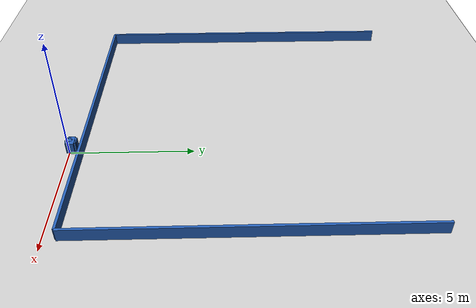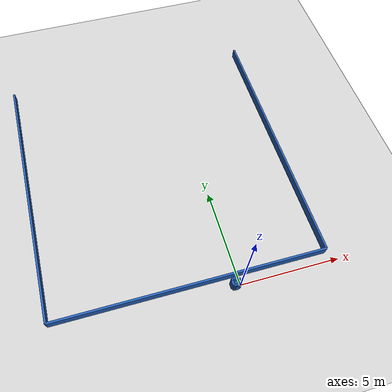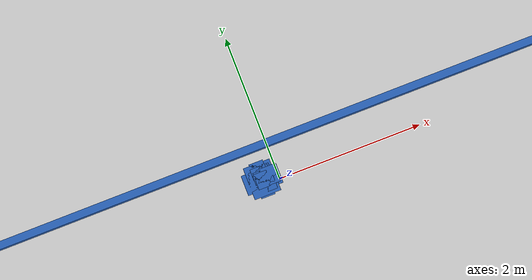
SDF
<?xml version="1.0" ?>
    <sdf version="1.5">
      <world name="default">
        <!-- A global light source -->
        <include>
          <uri>model://sun</uri>
        </include>
        <!-- A ground plane -->
        <include>
          <uri>model://ground_plane</uri>
        </include>

    <model name='libopen_space_final_T2B_129_11'>
      <static>1</static>
      <pose frame=''>-0.225000 0.075000 0.000000 0.000000 0.000000 0.000000</pose>
      <link name='link'>
        <inertial>
          <mass>1</mass>
          <inertia>
            <ixx>0.145833</ixx>
            <ixy>0</ixy>
            <ixz>0</ixz>
            <iyy>0.145833</iyy>
            <iyz>0</iyz>
            <izz>0.125</izz>
          </inertia>
        </inertial>
        <collision name='collision'>
          <geometry>
            <box>
              <size>0.36 0.43 1</size>
            </box>
          </geometry>
          <max_contacts>10</max_contacts>
          <surface>
            <contact>
              <ode/>
            </contact>
            <bounce/>
            <friction>
              <torsional>
                <ode/>
              </torsional>
              <ode/>
            </friction>
          </surface>
        </collision>
        <visual name='visual'>
          <geometry>
            <box>
              <size>0.36 0.43 1</size>
            </box>
          </geometry>
	    <material>
              <ambient>0.152000 0.379000 0.720000 1</ambient>
	      <diffuse>0.152000 0.379000 0.720000 1</diffuse>
          </material>
          <material>
            <script>
              <name>Gazebo/Grey</name>
              <uri>file://media/materials/scripts/gazebo.material</uri>
            </script>
          </material>
        </visual>
        <self_collide>0</self_collide>
        <kinematic>0</kinematic>
        <gravity>1</gravity>
      </link>
      <plugin name='libopen_space_final_T2B_129_11' filename='libopen_space_final_T2B_129_11.so'/>
    </model>

    <model name='libopen_space_final_T2B_125_48'>
      <static>1</static>
      <pose frame=''>-0.225000 0.075000 0.000000 0.000000 0.000000 0.000000</pose>
      <link name='link'>
        <inertial>
          <mass>1</mass>
          <inertia>
            <ixx>0.145833</ixx>
            <ixy>0</ixy>
            <ixz>0</ixz>
            <iyy>0.145833</iyy>
            <iyz>0</iyz>
            <izz>0.125</izz>
          </inertia>
        </inertial>
        <collision name='collision'>
          <geometry>
            <box>
              <size>0.30 0.35 1</size>
            </box>
          </geometry>
          <max_contacts>10</max_contacts>
          <surface>
            <contact>
              <ode/>
            </contact>
            <bounce/>
            <friction>
              <torsional>
                <ode/>
              </torsional>
              <ode/>
            </friction>
          </surface>
        </collision>
        <visual name='visual'>
          <geometry>
            <box>
              <size>0.30 0.35 1</size>
            </box>
          </geometry>
	    <material>
              <ambient>0.152000 0.379000 0.720000 1</ambient>
	      <diffuse>0.152000 0.379000 0.720000 1</diffuse>
          </material>
          <material>
            <script>
              <name>Gazebo/Grey</name>
              <uri>file://media/materials/scripts/gazebo.material</uri>
            </script>
          </material>
        </visual>
        <self_collide>0</self_collide>
        <kinematic>0</kinematic>
        <gravity>1</gravity>
      </link>
      <plugin name='libopen_space_final_T2B_125_48' filename='libopen_space_final_T2B_125_48.so'/>
    </model>

    <model name='libopen_space_final_T2B_87_56'>
      <static>1</static>
      <pose frame=''>-0.225000 0.075000 0.000000 0.000000 0.000000 0.000000</pose>
      <link name='link'>
        <inertial>
          <mass>1</mass>
          <inertia>
            <ixx>0.145833</ixx>
            <ixy>0</ixy>
            <ixz>0</ixz>
            <iyy>0.145833</iyy>
            <iyz>0</iyz>
            <izz>0.125</izz>
          </inertia>
        </inertial>
        <collision name='collision'>
          <geometry>
            <box>
              <size>0.14 0.12 1</size>
            </box>
          </geometry>
          <max_contacts>10</max_contacts>
          <surface>
            <contact>
              <ode/>
            </contact>
            <bounce/>
            <friction>
              <torsional>
                <ode/>
              </torsional>
              <ode/>
            </friction>
          </surface>
        </collision>
        <visual name='visual'>
          <geometry>
            <box>
              <size>0.14 0.12 1</size>
            </box>
          </geometry>
	    <material>
              <ambient>0.152000 0.379000 0.720000 1</ambient>
	      <diffuse>0.152000 0.379000 0.720000 1</diffuse>
          </material>
          <material>
            <script>
              <name>Gazebo/Grey</name>
              <uri>file://media/materials/scripts/gazebo.material</uri>
            </script>
          </material>
        </visual>
        <self_collide>0</self_collide>
        <kinematic>0</kinematic>
        <gravity>1</gravity>
      </link>
      <plugin name='libopen_space_final_T2B_87_56' filename='libopen_space_final_T2B_87_56.so'/>
    </model>

    <model name='libopen_space_final_T2B_83_66'>
      <static>1</static>
      <pose frame=''>-0.225000 0.075000 0.000000 0.000000 0.000000 0.000000</pose>
      <link name='link'>
        <inertial>
          <mass>1</mass>
          <inertia>
            <ixx>0.145833</ixx>
            <ixy>0</ixy>
            <ixz>0</ixz>
            <iyy>0.145833</iyy>
            <iyz>0</iyz>
            <izz>0.125</izz>
          </inertia>
        </inertial>
        <collision name='collision'>
          <geometry>
            <box>
              <size>0.19 0.47 1</size>
            </box>
          </geometry>
          <max_contacts>10</max_contacts>
          <surface>
            <contact>
              <ode/>
            </contact>
            <bounce/>
            <friction>
              <torsional>
                <ode/>
              </torsional>
              <ode/>
            </friction>
          </surface>
        </collision>
        <visual name='visual'>
          <geometry>
            <box>
              <size>0.19 0.47 1</size>
            </box>
          </geometry>
	    <material>
              <ambient>0.152000 0.379000 0.720000 1</ambient>
	      <diffuse>0.152000 0.379000 0.720000 1</diffuse>
          </material>
          <material>
            <script>
              <name>Gazebo/Grey</name>
              <uri>file://media/materials/scripts/gazebo.material</uri>
            </script>
          </material>
        </visual>
        <self_collide>0</self_collide>
        <kinematic>0</kinematic>
        <gravity>1</gravity>
      </link>
      <plugin name='libopen_space_final_T2B_83_66' filename='libopen_space_final_T2B_83_66.so'/>
    </model>

    <model name='libopen_space_final_T2B_148_40'>
      <static>1</static>
      <pose frame=''>-0.225000 0.075000 0.000000 0.000000 0.000000 0.000000</pose>
      <link name='link'>
        <inertial>
          <mass>1</mass>
          <inertia>
            <ixx>0.145833</ixx>
            <ixy>0</ixy>
            <ixz>0</ixz>
            <iyy>0.145833</iyy>
            <iyz>0</iyz>
            <izz>0.125</izz>
          </inertia>
        </inertial>
        <collision name='collision'>
          <geometry>
            <box>
              <size>0.20 0.16 1</size>
            </box>
          </geometry>
          <max_contacts>10</max_contacts>
          <surface>
            <contact>
              <ode/>
            </contact>
            <bounce/>
            <friction>
              <torsional>
                <ode/>
              </torsional>
              <ode/>
            </friction>
          </surface>
        </collision>
        <visual name='visual'>
          <geometry>
            <box>
              <size>0.20 0.16 1</size>
            </box>
          </geometry>
	    <material>
              <ambient>0.152000 0.379000 0.720000 1</ambient>
	      <diffuse>0.152000 0.379000 0.720000 1</diffuse>
          </material>
          <material>
            <script>
              <name>Gazebo/Grey</name>
              <uri>file://media/materials/scripts/gazebo.material</uri>
            </script>
          </material>
        </visual>
        <self_collide>0</self_collide>
        <kinematic>0</kinematic>
        <gravity>1</gravity>
      </link>
      <plugin name='libopen_space_final_T2B_148_40' filename='libopen_space_final_T2B_148_40.so'/>
    </model>

    <model name='libopen_space_final_T2B_105_38'>
      <static>1</static>
      <pose frame=''>-0.225000 0.075000 0.000000 0.000000 0.000000 0.000000</pose>
      <link name='link'>
        <inertial>
          <mass>1</mass>
          <inertia>
            <ixx>0.145833</ixx>
            <ixy>0</ixy>
            <ixz>0</ixz>
            <iyy>0.145833</iyy>
            <iyz>0</iyz>
            <izz>0.125</izz>
          </inertia>
        </inertial>
        <collision name='collision'>
          <geometry>
            <box>
              <size>0.34 0.16 1</size>
            </box>
          </geometry>
          <max_contacts>10</max_contacts>
          <surface>
            <contact>
              <ode/>
            </contact>
            <bounce/>
            <friction>
              <torsional>
                <ode/>
              </torsional>
              <ode/>
            </friction>
          </surface>
        </collision>
        <visual name='visual'>
          <geometry>
            <box>
              <size>0.34 0.16 1</size>
            </box>
          </geometry>
	    <material>
              <ambient>0.152000 0.379000 0.720000 1</ambient>
	      <diffuse>0.152000 0.379000 0.720000 1</diffuse>
          </material>
          <material>
            <script>
              <name>Gazebo/Grey</name>
              <uri>file://media/materials/scripts/gazebo.material</uri>
            </script>
          </material>
        </visual>
        <self_collide>0</self_collide>
        <kinematic>0</kinematic>
        <gravity>1</gravity>
      </link>
      <plugin name='libopen_space_final_T2B_105_38' filename='libopen_space_final_T2B_105_38.so'/>
    </model>

    <model name='libopen_space_final_T2B_52_49'>
      <static>1</static>
      <pose frame=''>-0.225000 0.075000 0.000000 0.000000 0.000000 0.000000</pose>
      <link name='link'>
        <inertial>
          <mass>1</mass>
          <inertia>
            <ixx>0.145833</ixx>
            <ixy>0</ixy>
            <ixz>0</ixz>
            <iyy>0.145833</iyy>
            <iyz>0</iyz>
            <izz>0.125</izz>
          </inertia>
        </inertial>
        <collision name='collision'>
          <geometry>
            <box>
              <size>0.20 0.37 1</size>
            </box>
          </geometry>
          <max_contacts>10</max_contacts>
          <surface>
            <contact>
              <ode/>
            </contact>
            <bounce/>
            <friction>
              <torsional>
                <ode/>
              </torsional>
              <ode/>
            </friction>
          </surface>
        </collision>
        <visual name='visual'>
          <geometry>
            <box>
              <size>0.20 0.37 1</size>
            </box>
          </geometry>
	    <material>
              <ambient>0.152000 0.379000 0.720000 1</ambient>
	      <diffuse>0.152000 0.379000 0.720000 1</diffuse>
          </material>
          <material>
            <script>
              <name>Gazebo/Grey</name>
              <uri>file://media/materials/scripts/gazebo.material</uri>
            </script>
          </material>
        </visual>
        <self_collide>0</self_collide>
        <kinematic>0</kinematic>
        <gravity>1</gravity>
      </link>
      <plugin name='libopen_space_final_T2B_52_49' filename='libopen_space_final_T2B_52_49.so'/>
    </model>

    <model name='libopen_space_final_T2B_73_9'>
      <static>1</static>
      <pose frame=''>-0.225000 0.075000 0.000000 0.000000 0.000000 0.000000</pose>
      <link name='link'>
        <inertial>
          <mass>1</mass>
          <inertia>
            <ixx>0.145833</ixx>
            <ixy>0</ixy>
            <ixz>0</ixz>
            <iyy>0.145833</iyy>
            <iyz>0</iyz>
            <izz>0.125</izz>
          </inertia>
        </inertial>
        <collision name='collision'>
          <geometry>
            <box>
              <size>0.11 0.34 1</size>
            </box>
          </geometry>
          <max_contacts>10</max_contacts>
          <surface>
            <contact>
              <ode/>
            </contact>
            <bounce/>
            <friction>
              <torsional>
                <ode/>
              </torsional>
              <ode/>
            </friction>
          </surface>
        </collision>
        <visual name='visual'>
          <geometry>
            <box>
              <size>0.11 0.34 1</size>
            </box>
          </geometry>
	    <material>
              <ambient>0.152000 0.379000 0.720000 1</ambient>
	      <diffuse>0.152000 0.379000 0.720000 1</diffuse>
          </material>
          <material>
            <script>
              <name>Gazebo/Grey</name>
              <uri>file://media/materials/scripts/gazebo.material</uri>
            </script>
          </material>
        </visual>
        <self_collide>0</self_collide>
        <kinematic>0</kinematic>
        <gravity>1</gravity>
      </link>
      <plugin name='libopen_space_final_T2B_73_9' filename='libopen_space_final_T2B_73_9.so'/>
    </model>

    <model name='libopen_space_final_T2B_126_78'>
      <static>1</static>
      <pose frame=''>-0.225000 0.075000 0.000000 0.000000 0.000000 0.000000</pose>
      <link name='link'>
        <inertial>
          <mass>1</mass>
          <inertia>
            <ixx>0.145833</ixx>
            <ixy>0</ixy>
            <ixz>0</ixz>
            <iyy>0.145833</iyy>
            <iyz>0</iyz>
            <izz>0.125</izz>
          </inertia>
        </inertial>
        <collision name='collision'>
          <geometry>
            <box>
              <size>0.18 0.19 1</size>
            </box>
          </geometry>
          <max_contacts>10</max_contacts>
          <surface>
            <contact>
              <ode/>
            </contact>
            <bounce/>
            <friction>
              <torsional>
                <ode/>
              </torsional>
              <ode/>
            </friction>
          </surface>
        </collision>
        <visual name='visual'>
          <geometry>
            <box>
              <size>0.18 0.19 1</size>
            </box>
          </geometry>
	    <material>
              <ambient>0.152000 0.379000 0.720000 1</ambient>
	      <diffuse>0.152000 0.379000 0.720000 1</diffuse>
          </material>
          <material>
            <script>
              <name>Gazebo/Grey</name>
              <uri>file://media/materials/scripts/gazebo.material</uri>
            </script>
          </material>
        </visual>
        <self_collide>0</self_collide>
        <kinematic>0</kinematic>
        <gravity>1</gravity>
      </link>
      <plugin name='libopen_space_final_T2B_126_78' filename='libopen_space_final_T2B_126_78.so'/>
    </model>

    <model name='libopen_space_final_T2B_123_13'>
      <static>1</static>
      <pose frame=''>-0.225000 0.075000 0.000000 0.000000 0.000000 0.000000</pose>
      <link name='link'>
        <inertial>
          <mass>1</mass>
          <inertia>
            <ixx>0.145833</ixx>
            <ixy>0</ixy>
            <ixz>0</ixz>
            <iyy>0.145833</iyy>
            <iyz>0</iyz>
            <izz>0.125</izz>
          </inertia>
        </inertial>
        <collision name='collision'>
          <geometry>
            <box>
              <size>0.24 0.16 1</size>
            </box>
          </geometry>
          <max_contacts>10</max_contacts>
          <surface>
            <contact>
              <ode/>
            </contact>
            <bounce/>
            <friction>
              <torsional>
                <ode/>
              </torsional>
              <ode/>
            </friction>
          </surface>
        </collision>
        <visual name='visual'>
          <geometry>
            <box>
              <size>0.24 0.16 1</size>
            </box>
          </geometry>
	    <material>
              <ambient>0.152000 0.379000 0.720000 1</ambient>
	      <diffuse>0.152000 0.379000 0.720000 1</diffuse>
          </material>
          <material>
            <script>
              <name>Gazebo/Grey</name>
              <uri>file://media/materials/scripts/gazebo.material</uri>
            </script>
          </material>
        </visual>
        <self_collide>0</self_collide>
        <kinematic>0</kinematic>
        <gravity>1</gravity>
      </link>
      <plugin name='libopen_space_final_T2B_123_13' filename='libopen_space_final_T2B_123_13.so'/>
    </model>

    <model name='libopen_space_final_T2B_134_25'>
      <static>1</static>
      <pose frame=''>-0.225000 0.075000 0.000000 0.000000 0.000000 0.000000</pose>
      <link name='link'>
        <inertial>
          <mass>1</mass>
          <inertia>
            <ixx>0.145833</ixx>
            <ixy>0</ixy>
            <ixz>0</ixz>
            <iyy>0.145833</iyy>
            <iyz>0</iyz>
            <izz>0.125</izz>
          </inertia>
        </inertial>
        <collision name='collision'>
          <geometry>
            <box>
              <size>0.48 0.27 1</size>
            </box>
          </geometry>
          <max_contacts>10</max_contacts>
          <surface>
            <contact>
              <ode/>
            </contact>
            <bounce/>
            <friction>
              <torsional>
                <ode/>
              </torsional>
              <ode/>
            </friction>
          </surface>
        </collision>
        <visual name='visual'>
          <geometry>
            <box>
              <size>0.48 0.27 1</size>
            </box>
          </geometry>
	    <material>
              <ambient>0.152000 0.379000 0.720000 1</ambient>
	      <diffuse>0.152000 0.379000 0.720000 1</diffuse>
          </material>
          <material>
            <script>
              <name>Gazebo/Grey</name>
              <uri>file://media/materials/scripts/gazebo.material</uri>
            </script>
          </material>
        </visual>
        <self_collide>0</self_collide>
        <kinematic>0</kinematic>
        <gravity>1</gravity>
      </link>
      <plugin name='libopen_space_final_T2B_134_25' filename='libopen_space_final_T2B_134_25.so'/>
    </model>

    <model name='libopen_space_final_T2B_91_29'>
      <static>1</static>
      <pose frame=''>-0.225000 0.075000 0.000000 0.000000 0.000000 0.000000</pose>
      <link name='link'>
        <inertial>
          <mass>1</mass>
          <inertia>
            <ixx>0.145833</ixx>
            <ixy>0</ixy>
            <ixz>0</ixz>
            <iyy>0.145833</iyy>
            <iyz>0</iyz>
            <izz>0.125</izz>
          </inertia>
        </inertial>
        <collision name='collision'>
          <geometry>
            <box>
              <size>0.21 0.34 1</size>
            </box>
          </geometry>
          <max_contacts>10</max_contacts>
          <surface>
            <contact>
              <ode/>
            </contact>
            <bounce/>
            <friction>
              <torsional>
                <ode/>
              </torsional>
              <ode/>
            </friction>
          </surface>
        </collision>
        <visual name='visual'>
          <geometry>
            <box>
              <size>0.21 0.34 1</size>
            </box>
          </geometry>
	    <material>
              <ambient>0.152000 0.379000 0.720000 1</ambient>
	      <diffuse>0.152000 0.379000 0.720000 1</diffuse>
          </material>
          <material>
            <script>
              <name>Gazebo/Grey</name>
              <uri>file://media/materials/scripts/gazebo.material</uri>
            </script>
          </material>
        </visual>
        <self_collide>0</self_collide>
        <kinematic>0</kinematic>
        <gravity>1</gravity>
      </link>
      <plugin name='libopen_space_final_T2B_91_29' filename='libopen_space_final_T2B_91_29.so'/>
    </model>

    <model name='libopen_space_final_T2B_118_43'>
      <static>1</static>
      <pose frame=''>-0.225000 0.075000 0.000000 0.000000 0.000000 0.000000</pose>
      <link name='link'>
        <inertial>
          <mass>1</mass>
          <inertia>
            <ixx>0.145833</ixx>
            <ixy>0</ixy>
            <ixz>0</ixz>
            <iyy>0.145833</iyy>
            <iyz>0</iyz>
            <izz>0.125</izz>
          </inertia>
        </inertial>
        <collision name='collision'>
          <geometry>
            <box>
              <size>0.17 0.23 1</size>
            </box>
          </geometry>
          <max_contacts>10</max_contacts>
          <surface>
            <contact>
              <ode/>
            </contact>
            <bounce/>
            <friction>
              <torsional>
                <ode/>
              </torsional>
              <ode/>
            </friction>
          </surface>
        </collision>
        <visual name='visual'>
          <geometry>
            <box>
              <size>0.17 0.23 1</size>
            </box>
          </geometry>
	    <material>
              <ambient>0.152000 0.379000 0.720000 1</ambient>
	      <diffuse>0.152000 0.379000 0.720000 1</diffuse>
          </material>
          <material>
            <script>
              <name>Gazebo/Grey</name>
              <uri>file://media/materials/scripts/gazebo.material</uri>
            </script>
          </material>
        </visual>
        <self_collide>0</self_collide>
        <kinematic>0</kinematic>
        <gravity>1</gravity>
      </link>
      <plugin name='libopen_space_final_T2B_118_43' filename='libopen_space_final_T2B_118_43.so'/>
    </model>

    <model name='libopen_space_final_T2B_112_28'>
      <static>1</static>
      <pose frame=''>-0.225000 0.075000 0.000000 0.000000 0.000000 0.000000</pose>
      <link name='link'>
        <inertial>
          <mass>1</mass>
          <inertia>
            <ixx>0.145833</ixx>
            <ixy>0</ixy>
            <ixz>0</ixz>
            <iyy>0.145833</iyy>
            <iyz>0</iyz>
            <izz>0.125</izz>
          </inertia>
        </inertial>
        <collision name='collision'>
          <geometry>
            <box>
              <size>0.43 0.21 1</size>
            </box>
          </geometry>
          <max_contacts>10</max_contacts>
          <surface>
            <contact>
              <ode/>
            </contact>
            <bounce/>
            <friction>
              <torsional>
                <ode/>
              </torsional>
              <ode/>
            </friction>
          </surface>
        </collision>
        <visual name='visual'>
          <geometry>
            <box>
              <size>0.43 0.21 1</size>
            </box>
          </geometry>
	    <material>
              <ambient>0.152000 0.379000 0.720000 1</ambient>
	      <diffuse>0.152000 0.379000 0.720000 1</diffuse>
          </material>
          <material>
            <script>
              <name>Gazebo/Grey</name>
              <uri>file://media/materials/scripts/gazebo.material</uri>
            </script>
          </material>
        </visual>
        <self_collide>0</self_collide>
        <kinematic>0</kinematic>
        <gravity>1</gravity>
      </link>
      <plugin name='libopen_space_final_T2B_112_28' filename='libopen_space_final_T2B_112_28.so'/>
    </model>

        <model name='bottom_wall'>
          <static>1</static>
          <pose frame=''>-2.25 0.5 0.000000 0.000000 0.000000 1.57079632</pose>
          <link name='link'>
            <inertial>
            <mass>1</mass>
            <inertia>
              <ixx>0.145833</ixx>
              <ixy>0</ixy>
              <ixz>0</ixz>
              <iyy>0.145833</iyy>
              <iyz>0</iyz>
              <izz>0.125</izz>
            </inertia>
            </inertial>
            <collision name='collision'>
            <geometry>
              <box>
              <size>0.1 13.5 1</size>
              </box>
            </geometry>
            <max_contacts>10</max_contacts>
            <surface>
              <contact>
              <ode/>
              </contact>
              <bounce/>
              <friction>
              <torsional>
                <ode/>
              </torsional>
              <ode/>
              </friction>
            </surface>
            </collision>
            <visual name='visual'>
            <geometry>
              <box>
              <size>0.1 13.5 1</size>
              </box>
            </geometry>
            <material>
              <ambient>0.152000 0.379000 0.720000 1</ambient>
            <diffuse>0.152000 0.379000 0.720000 1</diffuse>
            </material>
            <material>
              <script>
              <name>Gazebo/Grey</name>
              <uri>file://media/materials/scripts/gazebo.material</uri>
              </script>
            </material>
            </visual>
            <self_collide>0</self_collide>
            <kinematic>0</kinematic>
            <gravity>1</gravity>
          </link>
        </model>

        <model name='left_wall'>
          <static>1</static>
          <pose frame=''>-9 7.25 0.000000 0.000000 0.000000 0.000000</pose>
          <link name='link'>
            <inertial>
            <mass>1</mass>
            <inertia>
              <ixx>0.145833</ixx>
              <ixy>0</ixy>
              <ixz>0</ixz>
              <iyy>0.145833</iyy>
              <iyz>0</iyz>
              <izz>0.125</izz>
            </inertia>
            </inertial>
            <collision name='collision'>
            <geometry>
              <box>
              <size>0.1 13.5 1</size>
              </box>
            </geometry>
            <max_contacts>10</max_contacts>
            <surface>
              <contact>
              <ode/>
              </contact>
              <bounce/>
              <friction>
              <torsional>
                <ode/>
              </torsional>
              <ode/>
              </friction>
            </surface>
            </collision>
            <visual name='visual'>
            <geometry>
              <box>
              <size>0.1 13.5 1</size>
              </box>
            </geometry>
            <material>
              <ambient>0.152000 0.379000 0.720000 1</ambient>
            <diffuse>0.152000 0.379000 0.720000 1</diffuse>
            </material>
            <material>
              <script>
              <name>Gazebo/Grey</name>
              <uri>file://media/materials/scripts/gazebo.material</uri>
              </script>
            </material>
            </visual>
            <self_collide>0</self_collide>
            <kinematic>0</kinematic>
            <gravity>1</gravity>
          </link>
        </model>

        <model name='right_wall'>
          <static>1</static>
          <pose frame=''>4.5 7.25 0.000000 0.000000 0.000000 0.000000</pose>
          <link name='link'>
            <inertial>
            <mass>1</mass>
            <inertia>
              <ixx>0.145833</ixx>
              <ixy>0</ixy>
              <ixz>0</ixz>
              <iyy>0.145833</iyy>
              <iyz>0</iyz>
              <izz>0.125</izz>
            </inertia>
            </inertial>
            <collision name='collision'>
            <geometry>
              <box>
              <size>0.1 13.5 1</size>
              </box>
            </geometry>
            <max_contacts>10</max_contacts>
            <surface>
              <contact>
              <ode/>
              </contact>
              <bounce/>
              <friction>
              <torsional>
                <ode/>
              </torsional>
              <ode/>
              </friction>
            </surface>
            </collision>
            <visual name='visual'>
            <geometry>
              <box>
              <size>0.1 13.5 1</size>
              </box>
            </geometry>
            <material>
              <ambient>0.152000 0.379000 0.720000 1</ambient>
            <diffuse>0.152000 0.379000 0.720000 1</diffuse>
            </material>
            <material>
              <script>
              <name>Gazebo/Grey</name>
              <uri>file://media/materials/scripts/gazebo.material</uri>
              </script>
            </material>
            </visual>
            <self_collide>0</self_collide>
            <kinematic>0</kinematic>
            <gravity>1</gravity>
          </link>
        </model>

      </world>
    </sdf>"
